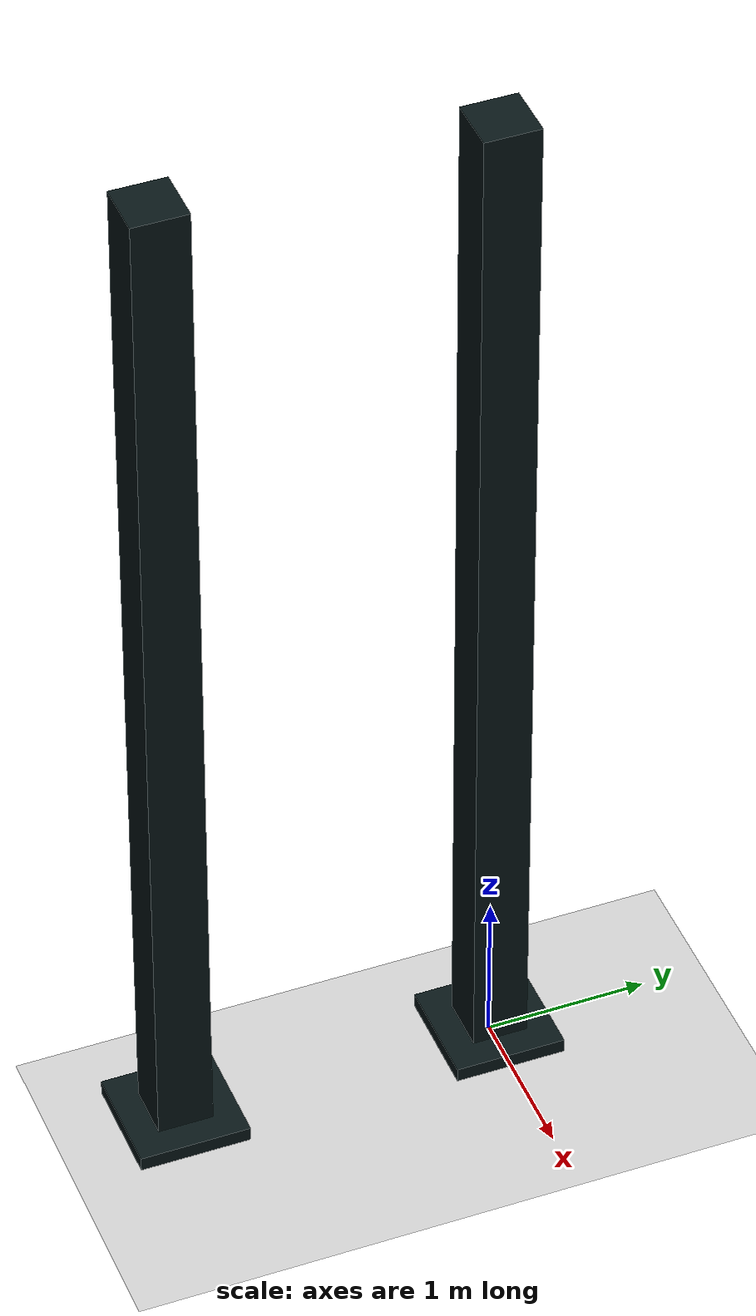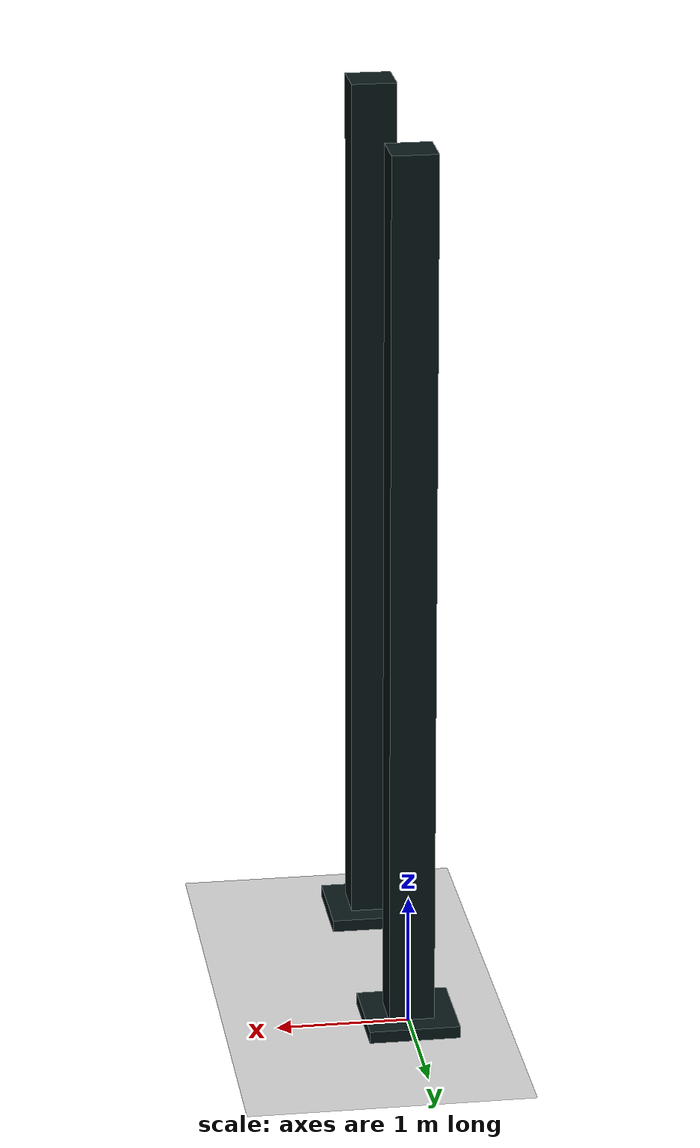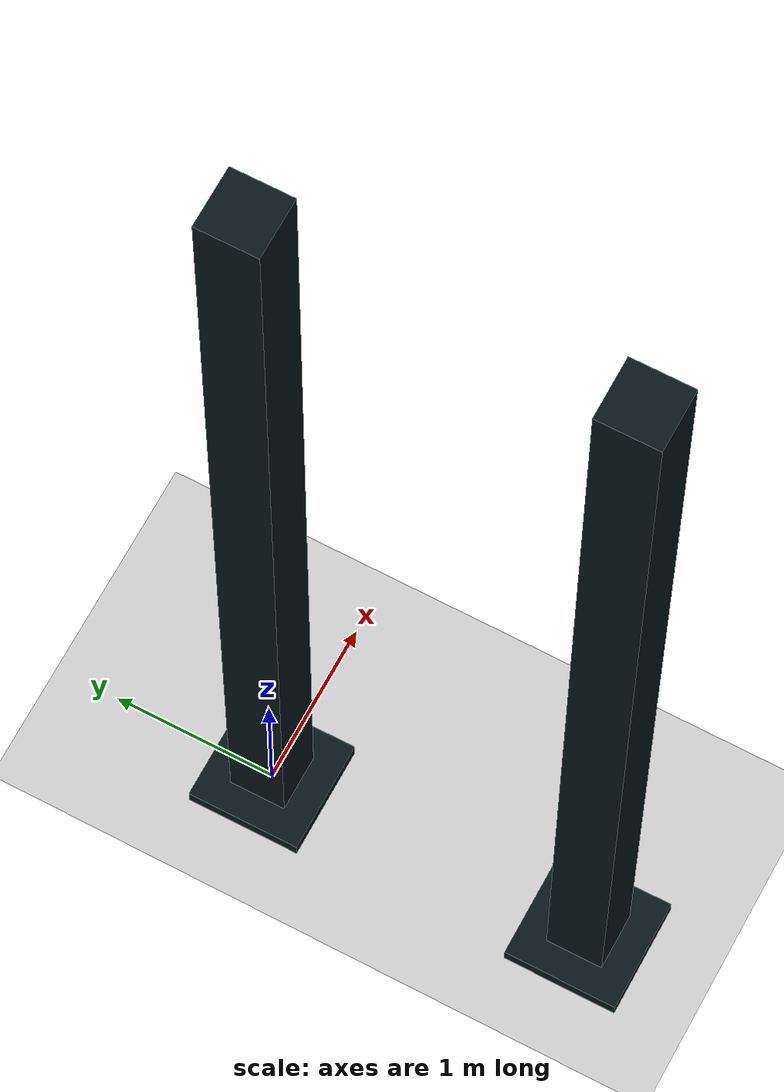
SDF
<sdf version="1.5">
 <world name="default">
  <model name="ground_plane">
   <static>1</static>
   <link name="link">
    <collision name="collision">
     <laser_retro>50</laser_retro>
     <geometry><plane><normal>0 0 1</normal><size>100 100</size></plane></geometry>
     <surface><friction><ode><mu>100</mu><mu2>50</mu2></ode></friction></surface>
    </collision>
    <visual name="visual">
     <cast_shadows>0</cast_shadows>
     <geometry><plane><normal>0 0 1</normal><size>100 100</size></plane></geometry>
     <material>
      <script><uri>file://media/materials/scripts/gazebo.material</uri><name>Gazebo/Grey</name></script>
     </material>
    </visual>
   </link>
  </model>
  <light name="sun" type="directional">
   <pose>0 0 10 0 -0 0</pose>
   <diffuse>0.8 0.8 0.8 1</diffuse>
   <specular>0.2 0.2 0.2 1</specular>
   <attenuation>
    <range>1000</range>
    <constant>0.9</constant>
    <linear>0.01</linear>
    <quadratic>0.001</quadratic>
   </attenuation>
   <direction>-0.5 0.1 -0.9</direction>
  </light>
  <model name="pylon">
   <static>1</static>
   <link name="link">
    <collision name="collision">
     <laser_retro>255</laser_retro>
     <geometry><mesh><uri>model://pylon/meshes/pylon.dae</uri></mesh></geometry>
     <surface><friction><ode><mu>100</mu><mu2>50</mu2></ode></friction></surface>
    </collision>
    <visual name="visual"><geometry><mesh><uri>model://pylon/meshes/pylon.dae</uri></mesh></geometry></visual>
   </link>
  </model>
  <physics name="default_physics" default="0" type="ode">
   <max_step_size>0.001</max_step_size>
   <real_time_factor>1</real_time_factor>
   <real_time_update_rate>1000</real_time_update_rate>
   <gravity>0 0 -9.8</gravity>
   <magnetic_field>5.5645e-06 2.28758e-05 -4.23884e-05</magnetic_field>
  </physics>
  <scene><ambient>0.4 0.4 0.4 1</ambient><background>0.7 0.7 0.7 1</background><shadows>1</shadows></scene>
  <audio><device>default</device></audio>
  <spherical_coordinates>
   <surface_model>EARTH_WGS84</surface_model>
   <latitude_deg>0</latitude_deg>
   <longitude_deg>0</longitude_deg>
   <elevation>0</elevation>
   <heading_deg>0</heading_deg>
  </spherical_coordinates>
  <model name="pylon_0">
   <static>1</static>
   <link name="link">
    <collision name="collision">
     <laser_retro>255</laser_retro>
     <geometry><mesh><uri>model://pylon/meshes/pylon.dae</uri></mesh></geometry>
     <surface><friction><ode><mu>100</mu><mu2>50</mu2></ode></friction></surface>
    </collision>
    <visual name="visual"><geometry><mesh><uri>model://pylon/meshes/pylon.dae</uri></mesh></geometry></visual>
   </link>
   <pose>0 -2 0 0 -0 0</pose>
  </model>
 </world>
</sdf>
